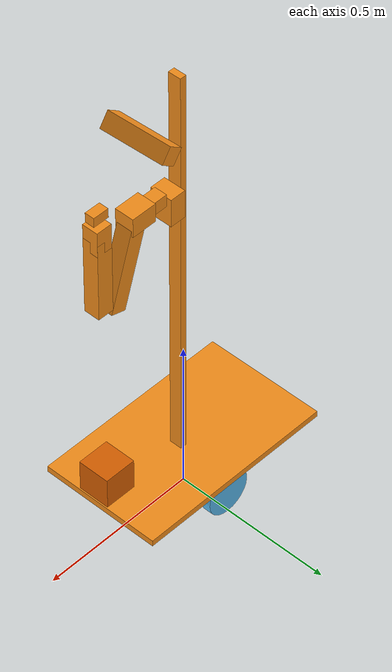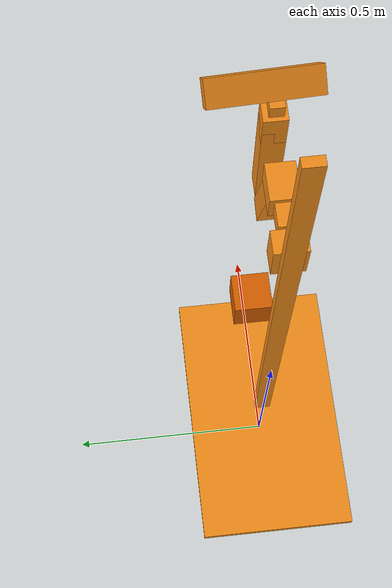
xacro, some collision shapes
<?xml version="1.0"?>
<!-- Revolute-Revolute Manipulator -->
<robot name="interaction_robot" xmlns:xacro="http://www.ros.org/wiki/xacro">
  <!-- Constants for robot dimensions -->
  <xacro:property name="PI" value="3.1415926535897931"/>

  <!-- Import Rviz colors -->
  <xacro:include filename="$(find icart_mini_description)/urdf/materials.xacro" />
  <xacro:include filename="$(find orne_description)/urdf/interaction_robot.gazebo"/>
	<xacro:include filename="$(find icart_mini_description)/urdf/sensors/hokuyo.urdf.xacro"/>

  <!-- Base Link -->
  <link name="base_link">
    <collision>
      <origin xyz="0 0 0.15" rpy="0 0 0"/>
      <geometry>
	<box size=".645 .385 .02"/>
      </geometry>
    </collision>

    <visual>
      <origin xyz="0 0 0.15" rpy="0 0 0"/>
      <geometry>
	<box size=".64 .385 .02"/>
      </geometry>
      <material name="orange"/>
    </visual>

    <collision>
      <origin xyz="0.02 0 0.81" rpy="0 0 0"/>
      <geometry>
  <box size=".020 .040 1.30"/>
      </geometry>
    </collision>

    <visual>
      <origin xyz="0.02 0 0.81" rpy="0 0 0"/>
      <geometry>
  <box size=".020 .040 1.30"/>
      </geometry>
      <material name="orange"/>
    </visual>

    <collision name="collision">
      <origin xyz="-0.185 -0.0875 0.05" rpy="0 1.5707 1.5707"/>
      <geometry>
        <cylinder  length="0.03" radius="0.04625"/>
      </geometry>
    </collision>
    <visual name="visual">
      <origin xyz="-0.185 -0.0875 0.05" rpy="0 1.5707 1.5707"/>
      <geometry>
        <cylinder  length="0.03" radius="0.04625"/>
      </geometry>
    </visual>

    <collision name="collision">
      <origin xyz="-0.185 0.0875 0.05" rpy="0 1.5707 1.5707"/>
      <geometry>
        <cylinder  length="0.03" radius="0.04625"/>
      </geometry>
    </collision>
    <visual name="visual">
      <origin xyz="-0.185 0.0875 0.05" rpy="0 1.5707 1.5707"/>
      <geometry>
        <cylinder  length="0.03" radius="0.04625"/>
      </geometry>
    </visual>

    <collision name="collision">
      <origin xyz="0.18 -0.0875 0.05" rpy="0 1.5707 1.5707"/>
      <geometry>
        <cylinder  length="0.03" radius="0.04625"/>
      </geometry>
    </collision>
    <visual name="visual">
      <origin xyz="0.18 -0.0875 0.05" rpy="0 1.5707 1.5707"/>
      <geometry>
        <cylinder  length="0.03" radius="0.04625"/>
      </geometry>
    </visual>

    <collision name="collision">
      <origin xyz="0.18 0.0875 0.05" rpy="0 1.5707 1.5707"/>
      <geometry>
        <cylinder  length="0.03" radius="0.04625"/>
      </geometry>
    </collision>
    <visual name="visual">
      <origin xyz="0.18 0.0875 0.05" rpy="0 1.5707 1.5707"/>
      <geometry>
        <cylinder  length="0.03" radius="0.04625"/>
      </geometry>
    </visual>

    <inertial>
       <mass value="20" />
       <origin xyz="0 0 0" rpy="0 0 0"/>
       <inertia ixx="1" ixy="0" ixz="0" iyy="1" iyz="0" izz="1" />
    </inertial>
  </link>

  <link name="visual_left_wheel">
    <visual name="visual">
      <origin xyz="0 0 0" rpy="0 1.5707 1.5707"/>
      <geometry>
        <cylinder  length="0.03" radius="0.0725"/>
      </geometry>
    </visual>
  </link>

  <joint type="fixed" name="visual_left_wheel_hinge">
    <origin xyz="0 0.15 0.0725" rpy="0 0 0"/>
    <child link="visual_left_wheel">visual_left_wheel</child>
    <parent link="base_link">base_link</parent>
    <axis xyz="0 1 0"/>
  </joint>

  <link name="left_wheel">
    <collision name="collision">
      <origin xyz="0 -0 0" rpy="0 1.5707 1.5707"/>
      <geometry>
         <cylinder  length="0.03" radius="0.0725"/>
      </geometry>
    </collision>
    <inertial>
      <mass value="1" />
      <origin xyz="0 0.0 0"/>
      <inertia ixx="0.1" ixy="0" ixz="0" iyy="0.1" iyz="0" izz="0.1" />
    </inertial>
  </link>

  <joint type="revolute" name="left_wheel_hinge">
    <origin xyz="0 0.15 0.07258" rpy="0 0 0"/>
    <child link="left_wheel">left_wheel</child>
    <parent link="base_link">base_link</parent>
    <axis xyz="0 1 0"/>
    <limit effort="100" velocity="100.0"  lower="-5000" upper="5000" />
  </joint>

  <link name="visual_right_wheel">
    <visual name="visual">
      <origin xyz="0 -0 0" rpy="0 1.5707 1.5707"/>
      <geometry>
        <cylinder  length="0.03" radius="0.0725"/>
      </geometry>
    </visual>
  </link>

  <joint type="fixed" name="visual_right_wheel_hinge">
    <origin xyz="0 -0.15 0.0725" rpy="0 0 0"/>
    <child link="visual_right_wheel">visual_right_wheel</child>
    <parent link="base_link">base_link</parent>
    <axis xyz="0 1 0"/>
  </joint>

  <link name="right_wheel">
    <collision name="collision">
      <origin xyz="0 -0 0" rpy="0 1.5707 1.5707"/>
      <geometry>
         <cylinder  length="0.03" radius="0.0725"/>
      </geometry>
    </collision>
    <inertial>
      <mass value="1" />
      <origin xyz="0 0.0 0"/>
      <inertia ixx="0.1" ixy="0" ixz="0" iyy="0.1" iyz="0" izz="0.1" />
    </inertial>
  </link>

  <joint type="revolute" name="right_wheel_hinge">
    <origin xyz="0 -0.15 0.0725" rpy="0 0 0"/>
    <child link="right_wheel">right_wheel</child>
    <parent link="base_link">base_link</parent>
    <axis xyz="0 1 0"/>
    <limit effort="100" velocity="100.0"  lower="-5000" upper="5000" />
  </joint>

  <transmission name="tran1">
    <type>transmission_interface/SimpleTransmission</type>
    <joint name="left_wheel_hinge">
      <hardwareInterface>VelocityJointInterface</hardwareInterface>
    </joint>
  <actuator name="left_motor">
      <hardwareInterface>VelocityJointInterface</hardwareInterface>
      <mechanicalReduction>1</mechanicalReduction>
    </actuator>
  </transmission>

  <transmission name="tran2">
    <type>transmission_interface/SimpleTransmission</type>
    <joint name="right_wheel_hinge">
      <hardwareInterface>VelocityJointInterface</hardwareInterface>
    </joint>
  <actuator name="right_motor">
      <hardwareInterface>VelocityJointInterface</hardwareInterface>
      <mechanicalReduction>1</mechanicalReduction>
    </actuator>
  </transmission>

	<!-- 2d urg -->
	<xacro:sensor_hokuyo name="hokuyo" parent="base_link">
		<origin xyz="0.29 0 0.2485" rpy="0 0 0"/>
	</xacro:sensor_hokuyo>

	<!-- kinect -->
  <joint type="fixed" name="neck_joint_0">
    <parent link="base_link"/>
    <child link="camera_link"/>
    <origin xyz="0.20 0.05 1.40" rpy="0 0.43 0.04"/>
  </joint>

   <link name="camera_link">
    <visual name="visual">
      <origin xyz="0.0 0 0.0" rpy="0 0.5 0"/>
      <geometry>
	      <box size=".05 .2 .05"/>
      </geometry>
      <material name="orange"/>
    </visual>
  </link>

  <!-- arm -->
  <joint type="fixed" name="up_bottun_bar_joint">
    <parent link="base_link"/>
    <child link="up_bottun_bar"/>
    <origin xyz="0.82 0.0 1.3" rpy="0 0 0"/>
  </joint>

  <link name="up_bottun_bar">
  </link>

  <joint type="fixed" name="arm_base_joint">
    <parent link="base_link"/>
    <child link="arm_base"/>
    <origin xyz="0.055 0.0 1.06" rpy="0 0 0"/>
  </joint>

  <link name="arm_base">
    <visual name="visual">
      <origin xyz="0.0 0 0.0" rpy="0 0 0"/>
      <geometry>
	      <box size=".05 .07 .09"/>
      </geometry>
      <material name="orange"/>
    </visual>
  </link>

  <joint type="revolute" name="arm_joint_0">
    <parent link="arm_base"/>
    <child link="arm_link_1"/>
    <origin xyz="0.025 0.0 0.035" rpy="0 0 0"/>
    <axis xyz="1 0 0" rpy="0 0 0"/>
    <limit effort="100" velocity="100.0"  lower="-1.5" upper="1.5" />
  </joint>

  <link name="arm_link_1">
    <visual name="visual">
      <origin xyz="0.035 0 0.0" rpy="0 0 0"/>
      <geometry>
	      <box size="0.07 0.04 0.04"/>
      </geometry>
      <material name="orange"/>
    </visual>
  </link>

  <joint type="revolute" name="arm_joint_1">
    <parent link="arm_link_1"/>
    <child link="arm_link_2"/>
    <origin xyz="0.05 0.0 0.0" rpy="3.14 0 0"/>
    <axis xyz="0 0 1" rpy="0 0 0"/>
    <limit effort="100" velocity="100.0"  lower="-1.5" upper="1.5" />
  </joint>

   <link name="arm_link_2">
    <visual name="visual">
      <origin xyz="0.04 0 0" rpy="0 0 0"/>
      <geometry>
	      <box size="0.08 0.06 0.06"/>
      </geometry>
      <material name="orange"/>
    </visual>
  </link>

  <joint type="revolute" name="arm_joint_2">
    <parent link="arm_link_2"/>
    <child link="arm_link_3"/>
    <origin xyz="0.05 0.0 0.0" rpy="3.14 0.3 0"/>
    <axis xyz="0 1 0" rpy="0 0 0"/>
    <limit effort="100" velocity="100.0"  lower="-3.14" upper="0" />
  </joint>

  <link name="arm_link_3">
    <visual name="visual">
      <origin xyz="0.0 0. -0.13" rpy="0 0 0"/>
      <geometry>
	      <box size="0.05 0.05 0.28"/>
      </geometry>
      <material name="orange"/>
    </visual>
  </link>

  <joint type="revolute" name="arm_joint_3">
    <parent link="arm_link_3"/>
    <child link="arm_link_4"/>
    <origin xyz="0.0 0.0 -0.25" rpy="0 -0.3 3.14"/>
    <axis xyz="0 1 0" rpy="0 0 0"/>
    <limit effort="100" velocity="100.0"  lower="-3.14" upper="0" />
  </joint>

  <link name="arm_link_4">
    <collision>
      <origin xyz="-0.05 0 -0.13" rpy="0 0 0"/>
      <geometry>
	      <box size="0.05 0.05 0.10"/>
      </geometry>
      <material name="orange"/>
    </collision>
    <visual name="visual">
      <origin xyz="-0.05 0 0.13" rpy="0 0 0"/>
      <geometry>
	      <box size="0.05 0.05 0.25"/>
      </geometry>
    <material name="orange"/>
    </visual>
  </link>

  <joint type="revolute" name="arm_joint_4">
    <parent link="arm_link_4"/>
    <child link="arm_link_5"/>
    <origin xyz="-0.05 0.0 0.23" rpy="0 0 3.14"/>
    <axis xyz="0 1 0" rpy="0 0 0"/>
    <limit effort="100" velocity="100.0"  lower="0.0" upper="1.57" />
  </joint>

  <link name="arm_link_5">
    <visual name="visual">
      <origin xyz="0.0 0 0.03" rpy="0 0 0"/>
      <geometry>
	      <box size="0.05 0.05 0.08"/>
      </geometry>
      <material name="orange"/>
    </visual>
  </link>

  <joint type="revolute" name="arm_joint_5">
    <parent link="arm_link_5"/>
    <child link="arm_link_6"/>
    <origin xyz="0.0 0.0 0.06" rpy="0 0 3.14"/>
    <axis xyz="1 0 0" rpy="0 0 0"/>
    <limit effort="100" velocity="100.0"  lower="-1.57" upper="1.57" />
  </joint>

  <link name="arm_link_6">
    <visual name="visual">
      <origin xyz="0.0 0 0.04" rpy="0 0 0"/>
      <geometry>
	      <box size="0.05 0.03 0.03"/>
      </geometry>
      <material name="orange"/>
    </visual>
  </link>

</robot>

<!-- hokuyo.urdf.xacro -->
<robot name="sensor_hokuyo" xmlns:xacro="http://ros.org/wiki/xacro"
                              xmlns:controller="http://playerstage.sourceforge.net/gazebo/xmlschema/#controller"
                              xmlns:interface="http://playerstage.sourceforge.net/gazebo/xmlschema/#interface">

  <xacro:property name="hokuyo_link" value="0.1" /> <!-- Size of square 'hokuyo' box -->
  <xacro:macro name="sensor_hokuyo" params="name parent *origin">
    <joint name="${name}_joint" type="fixed">
      <axis xyz="0 1 0"/>
      <xacro:insert_block name="origin"/>
      <parent link="${parent}"/>
      <child link="${name}_link"/>
    </joint>

    <link name="${name}_link">
      <collision>
        <origin xyz="0 0 0" rpy="0 0 0"/>
        <geometry>
            <box size="${hokuyo_link} ${hokuyo_link} ${hokuyo_link}"/>
        </geometry>
      </collision>

      <visual>
        <origin xyz="0 0 0" rpy="0 0 0"/>
        <geometry>
          <mesh filename="package://icart_mini_description/meshes/hokuyo.dae"/>
        </geometry>
      </visual>

      <inertial>
        <mass value="0.0001"/>
        <origin xyz="0 0 0" rpy="0 0 0"/>
        <inertia ixx="0.0001" ixy="0" ixz="0" iyy="0.0001" iyz="0" izz="0.0001"/>
      </inertial>
    </link>

  </xacro:macro>

</robot>
